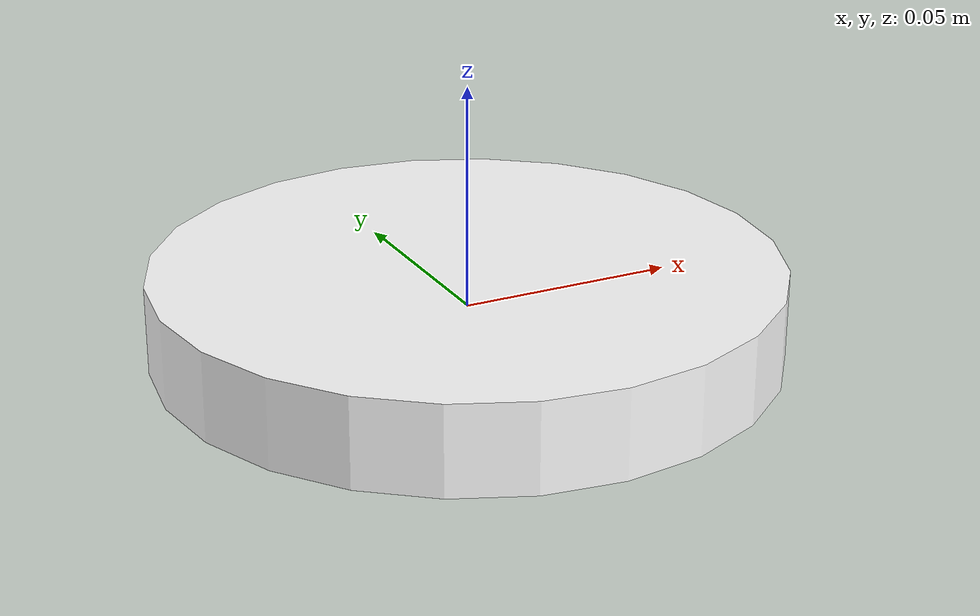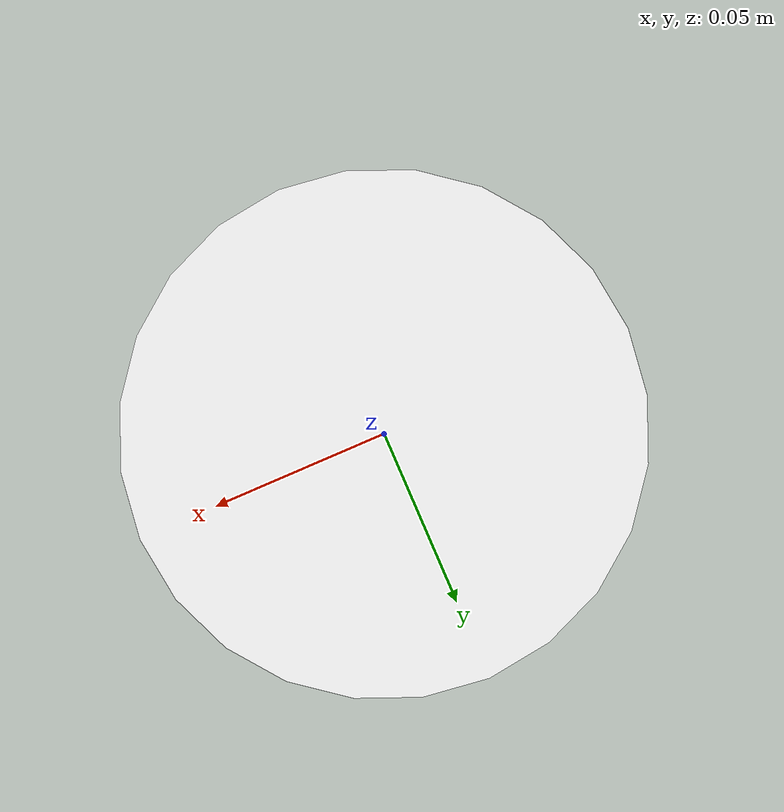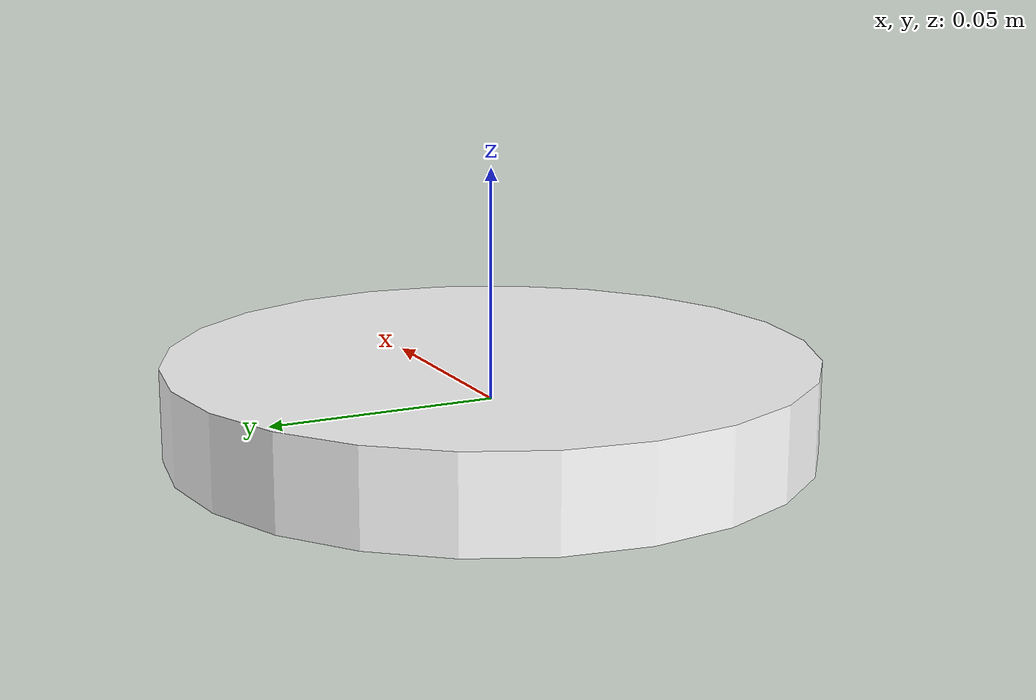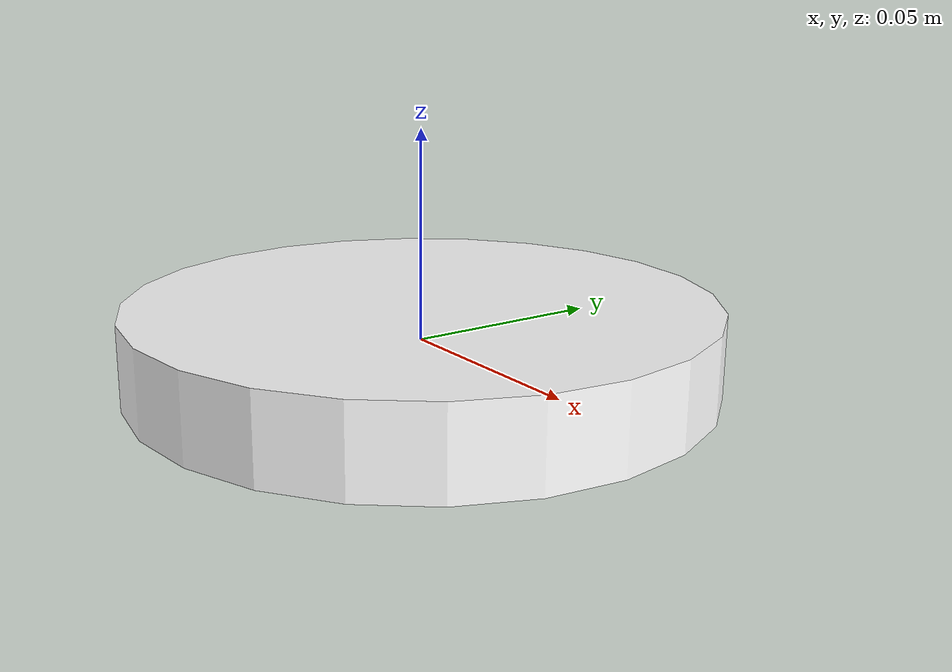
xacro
<?xml version="1.0"?>
<robot xmlns:xacro="http://ros.org/wiki/xacro">

<xacro:property name="name"                     value="rplidar"/>
<xacro:property name="parent_link"              value="chassis"/>

  <link name="${name}_link">
    <visual>
      <geometry>
         <cylinder radius="0.07" length="0.02"/>
      </geometry>
      <material name="White">
         <color rgba="1.0 1.0 1.0 1.0"/>
      </material>
    </visual>
    <collision>
      <origin xyz="0 0 0" rpy="0 0 1.5708"/>
      <geometry>
         <cylinder radius="0.07" length="0.02"/>
      </geometry>
    </collision>
    <inertial>
        <origin xyz="0.0 0.0 0.0" rpy="0.0 0.0 0.0"/>
        <mass value="1.0"/>
        <inertia ixx="0.013544611" ixy="0" ixz="0" iyy="0.013544611" iyz="0" izz="0.026371628"/>
    </inertial>
  </link>

  <sensor name="lidar_sensor" type="gpu_lidar">
    <topic>scan</topic>
    <update_rate>10</update_rate>
    <always_on>true</always_on>
    <visualize>true</visualize>
    <lidar>
      <scan>
        <horizontal>
          <samples>720</samples>
          <resolution>0.5</resolution>
          <min_angle>-3.14159</min_angle>
          <max_angle>3.14159</max_angle>
        </horizontal>
        <vertical>
          <samples>1</samples>
          <resolution>1</resolution>
          <min_angle>0</min_angle>
          <max_angle>0</max_angle>
        </vertical>
      </scan>
      <range>
        <min>0.15</min>
        <max>12</max>
        <resolution>0.01</resolution>
      </range>
    </lidar>
  </sensor>

</robot>
